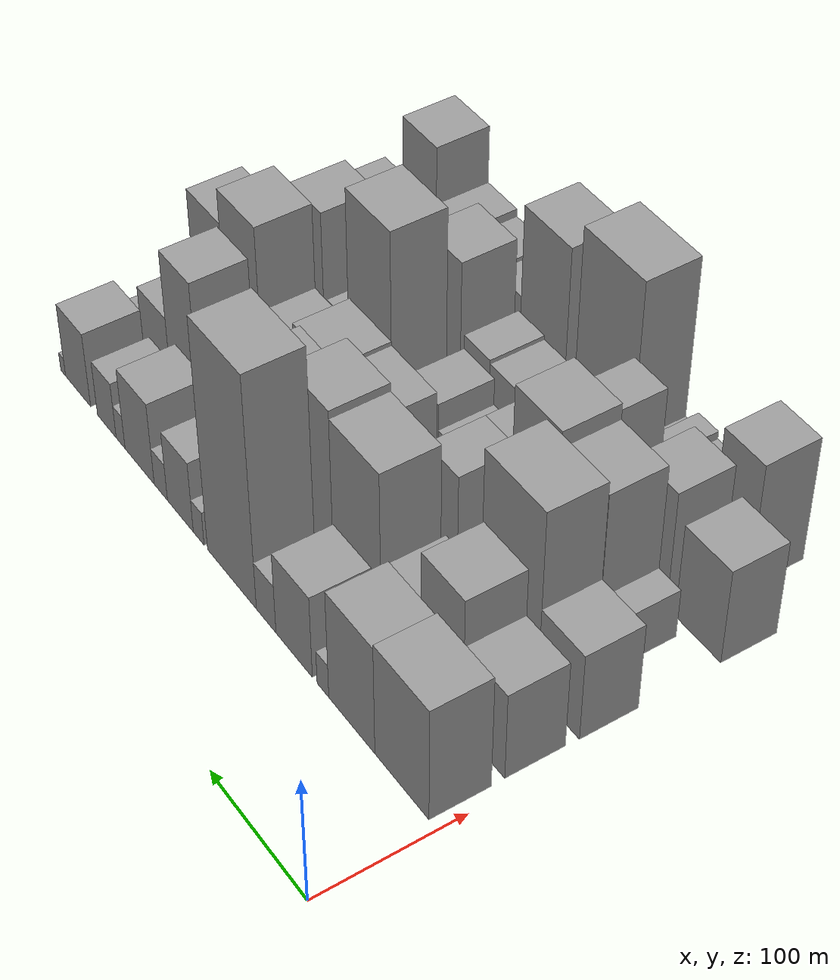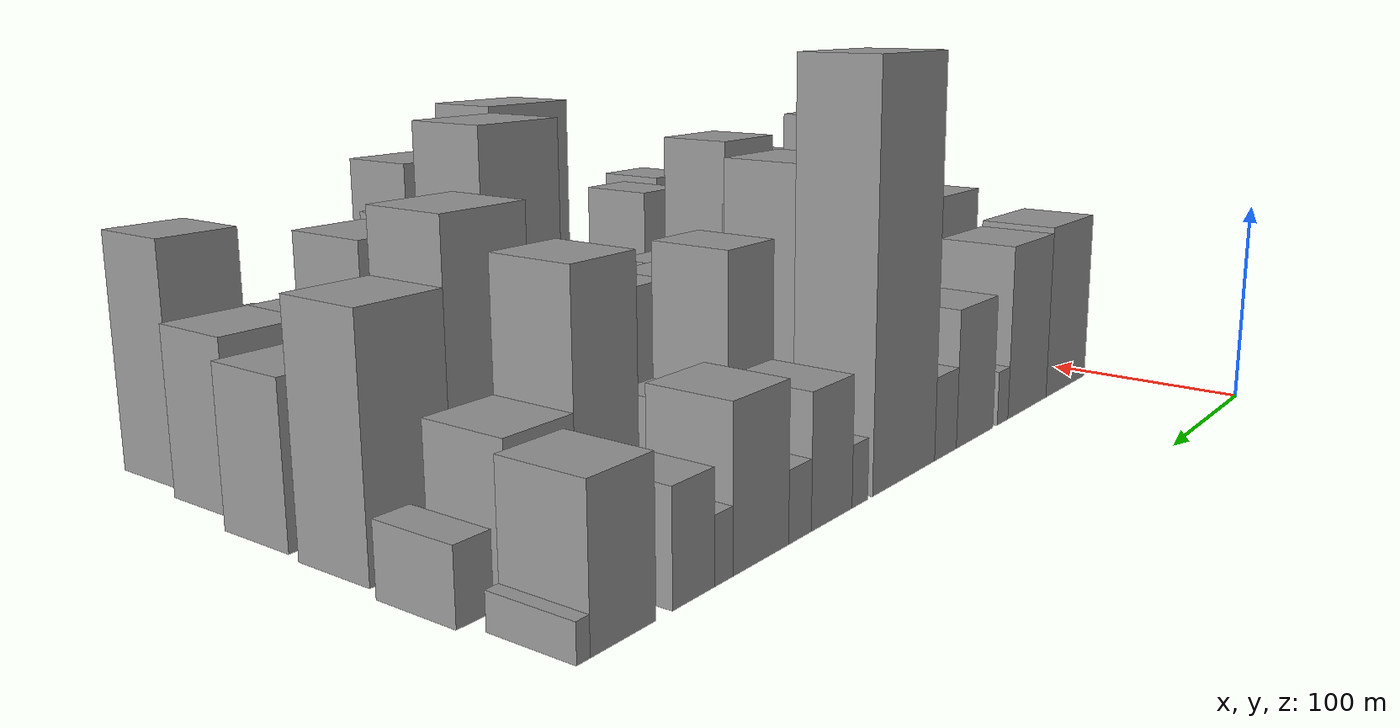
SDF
<sdf version="1.6">
 <world name="default">
  <model name="building_25">
   <static>1</static>
   <pose>100.0000 34.4187 0 0.000000 0.000000 0.000000</pose>
   <link name="link">
    <pose>0 0 45.00 0 0 0</pose>
    <collision name="collision"><geometry><box><size>40.0000 52.7319 90.0000</size></box></geometry></collision>
    <visual name="visual">
     <cast_shadows>0</cast_shadows>
     <geometry><box><size>40.0000 52.7319 90.0000</size></box></geometry>
     <material>
      <script>
       <uri>model://grey_wall/materials/scripts</uri>
       <uri>model://grey_wall/materials/textures</uri>
       <name>vrc/grey_wall</name>
      </script>
     </material>
    </visual>
   </link>
  </model>
  <model name="building_26">
   <static>1</static>
   <pose>100.0000 84.2863 0 0.000000 0.000000 0.000000</pose>
   <link name="link">
    <pose>0 0 43.50 0 0 0</pose>
    <collision name="collision"><geometry><box><size>40.0000 47.0033 87.0000</size></box></geometry></collision>
    <visual name="visual">
     <cast_shadows>0</cast_shadows>
     <geometry><box><size>40.0000 47.0033 87.0000</size></box></geometry>
     <material>
      <script>
       <uri>model://grey_wall/materials/scripts</uri>
       <uri>model://grey_wall/materials/textures</uri>
       <name>vrc/grey_wall</name>
      </script>
     </material>
    </visual>
   </link>
  </model>
  <model name="building_27">
   <static>1</static>
   <pose>100.0000 113.9015 0 0.000000 0.000000 0.000000</pose>
   <link name="link">
    <pose>0 0 13.50 0 0 0</pose>
    <collision name="collision"><geometry><box><size>40.0000 12.2271 27.0000</size></box></geometry></collision>
    <visual name="visual">
     <cast_shadows>0</cast_shadows>
     <geometry><box><size>40.0000 12.2271 27.0000</size></box></geometry>
     <material>
      <script>
       <uri>model://grey_wall/materials/scripts</uri>
       <uri>model://grey_wall/materials/textures</uri>
       <name>vrc/grey_wall</name>
      </script>
     </material>
    </visual>
   </link>
  </model>
  <model name="building_28">
   <static>1</static>
   <pose>100.0000 144.5365 0 0.000000 0.000000 0.000000</pose>
   <link name="link">
    <pose>0 0 33.00 0 0 0</pose>
    <collision name="collision"><geometry><box><size>40.0000 39.0430 66.0000</size></box></geometry></collision>
    <visual name="visual">
     <cast_shadows>0</cast_shadows>
     <geometry><box><size>40.0000 39.0430 66.0000</size></box></geometry>
     <material>
      <script>
       <uri>model://grey_wall/materials/scripts</uri>
       <uri>model://grey_wall/materials/textures</uri>
       <name>vrc/grey_wall</name>
      </script>
     </material>
    </visual>
   </link>
  </model>
  <model name="building_29">
   <static>1</static>
   <pose>100.0000 174.8600 0 0.000000 0.000000 0.000000</pose>
   <link name="link">
    <pose>0 0 19.50 0 0 0</pose>
    <collision name="collision"><geometry><box><size>40.0000 21.6038 39.0000</size></box></geometry></collision>
    <visual name="visual">
     <cast_shadows>0</cast_shadows>
     <geometry><box><size>40.0000 21.6038 39.0000</size></box></geometry>
     <material>
      <script>
       <uri>model://grey_wall/materials/scripts</uri>
       <uri>model://grey_wall/materials/textures</uri>
       <name>vrc/grey_wall</name>
      </script>
     </material>
    </visual>
   </link>
  </model>
  <model name="building_30">
   <static>1</static>
   <pose>100.0000 213.5052 0 0.000000 0.000000 0.000000</pose>
   <link name="link">
    <pose>0 0 91.50 0 0 0</pose>
    <collision name="collision"><geometry><box><size>40.0000 55.6866 183.0000</size></box></geometry></collision>
    <visual name="visual">
     <cast_shadows>0</cast_shadows>
     <geometry><box><size>40.0000 55.6866 183.0000</size></box></geometry>
     <material>
      <script>
       <uri>model://grey_wall/materials/scripts</uri>
       <uri>model://grey_wall/materials/textures</uri>
       <name>vrc/grey_wall</name>
      </script>
     </material>
    </visual>
   </link>
  </model>
  <model name="building_31">
   <static>1</static>
   <pose>100.0000 251.6890 0 0.000000 0.000000 0.000000</pose>
   <link name="link">
    <pose>0 0 13.50 0 0 0</pose>
    <collision name="collision"><geometry><box><size>40.0000 12.6810 27.0000</size></box></geometry></collision>
    <visual name="visual">
     <cast_shadows>0</cast_shadows>
     <geometry><box><size>40.0000 12.6810 27.0000</size></box></geometry>
     <material>
      <script>
       <uri>model://grey_wall/materials/scripts</uri>
       <uri>model://grey_wall/materials/textures</uri>
       <name>vrc/grey_wall</name>
      </script>
     </material>
    </visual>
   </link>
  </model>
  <model name="building_32">
   <static>1</static>
   <pose>100.0000 273.4831 0 0.000000 0.000000 0.000000</pose>
   <link name="link">
    <pose>0 0 28.50 0 0 0</pose>
    <collision name="collision"><geometry><box><size>40.0000 30.9074 57.0000</size></box></geometry></collision>
    <visual name="visual">
     <cast_shadows>0</cast_shadows>
     <geometry><box><size>40.0000 30.9074 57.0000</size></box></geometry>
     <material>
      <script>
       <uri>model://grey_wall/materials/scripts</uri>
       <uri>model://grey_wall/materials/textures</uri>
       <name>vrc/grey_wall</name>
      </script>
     </material>
    </visual>
   </link>
  </model>
  <model name="building_33">
   <static>1</static>
   <pose>100.0000 296.9893 0 0.000000 0.000000 0.000000</pose>
   <link name="link">
    <pose>0 0 15.00 0 0 0</pose>
    <collision name="collision"><geometry><box><size>40.0000 16.1050 30.0000</size></box></geometry></collision>
    <visual name="visual">
     <cast_shadows>0</cast_shadows>
     <geometry><box><size>40.0000 16.1050 30.0000</size></box></geometry>
     <material>
      <script>
       <uri>model://grey_wall/materials/scripts</uri>
       <uri>model://grey_wall/materials/textures</uri>
       <name>vrc/grey_wall</name>
      </script>
     </material>
    </visual>
   </link>
  </model>
  <model name="building_34">
   <static>1</static>
   <pose>100.0000 323.2109 0 0.000000 0.000000 0.000000</pose>
   <link name="link">
    <pose>0 0 33.00 0 0 0</pose>
    <collision name="collision"><geometry><box><size>40.0000 36.3383 66.0000</size></box></geometry></collision>
    <visual name="visual">
     <cast_shadows>0</cast_shadows>
     <geometry><box><size>40.0000 36.3383 66.0000</size></box></geometry>
     <material>
      <script>
       <uri>model://grey_wall/materials/scripts</uri>
       <uri>model://grey_wall/materials/textures</uri>
       <name>vrc/grey_wall</name>
      </script>
     </material>
    </visual>
   </link>
  </model>
  <model name="building_35">
   <static>1</static>
   <pose>100.0000 347.0248 0 0.000000 0.000000 0.000000</pose>
   <link name="link">
    <pose>0 0 13.50 0 0 0</pose>
    <collision name="collision"><geometry><box><size>40.0000 11.2897 27.0000</size></box></geometry></collision>
    <visual name="visual">
     <cast_shadows>0</cast_shadows>
     <geometry><box><size>40.0000 11.2897 27.0000</size></box></geometry>
     <material>
      <script>
       <uri>model://grey_wall/materials/scripts</uri>
       <uri>model://grey_wall/materials/textures</uri>
       <name>vrc/grey_wall</name>
      </script>
     </material>
    </visual>
   </link>
  </model>
  <model name="building_36">
   <static>1</static>
   <pose>100.0000 364.6943 0 0.000000 0.000000 0.000000</pose>
   <link name="link">
    <pose>0 0 22.50 0 0 0</pose>
    <collision name="collision"><geometry><box><size>40.0000 24.0492 45.0000</size></box></geometry></collision>
    <visual name="visual">
     <cast_shadows>0</cast_shadows>
     <geometry><box><size>40.0000 24.0492 45.0000</size></box></geometry>
     <material>
      <script>
       <uri>model://grey_wall/materials/scripts</uri>
       <uri>model://grey_wall/materials/textures</uri>
       <name>vrc/grey_wall</name>
      </script>
     </material>
    </visual>
   </link>
  </model>
  <model name="building_37">
   <static>1</static>
   <pose>100.0000 402.3013 0 0.000000 0.000000 0.000000</pose>
   <link name="link">
    <pose>0 0 30.00 0 0 0</pose>
    <collision name="collision"><geometry><box><size>40.0000 33.1650 60.0000</size></box></geometry></collision>
    <visual name="visual">
     <cast_shadows>0</cast_shadows>
     <geometry><box><size>40.0000 33.1650 60.0000</size></box></geometry>
     <material>
      <script>
       <uri>model://grey_wall/materials/scripts</uri>
       <uri>model://grey_wall/materials/textures</uri>
       <name>vrc/grey_wall</name>
      </script>
     </material>
    </visual>
   </link>
  </model>
  <model name="building_38">
   <static>1</static>
   <pose>100.0000 422.0885 0 0.000000 0.000000 0.000000</pose>
   <link name="link">
    <pose>0 0 7.50 0 0 0</pose>
    <collision name="collision"><geometry><box><size>40.0000 6.4094 15.0000</size></box></geometry></collision>
    <visual name="visual">
     <cast_shadows>0</cast_shadows>
     <geometry><box><size>40.0000 6.4094 15.0000</size></box></geometry>
     <material>
      <script>
       <uri>model://grey_wall/materials/scripts</uri>
       <uri>model://grey_wall/materials/textures</uri>
       <name>vrc/grey_wall</name>
      </script>
     </material>
    </visual>
   </link>
  </model>
  <model name="building_70">
   <static>1</static>
   <pose>149.0000 28.4227 0 0.000000 0.000000 0.000000</pose>
   <link name="link">
    <pose>0 0 34.50 0 0 0</pose>
    <collision name="collision"><geometry><box><size>40.0000 40.0129 69.0000</size></box></geometry></collision>
    <visual name="visual">
     <cast_shadows>0</cast_shadows>
     <geometry><box><size>40.0000 40.0129 69.0000</size></box></geometry>
     <material>
      <script>
       <uri>model://grey_wall/materials/scripts</uri>
       <uri>model://grey_wall/materials/textures</uri>
       <name>vrc/grey_wall</name>
      </script>
     </material>
    </visual>
   </link>
  </model>
  <model name="building_71">
   <static>1</static>
   <pose>149.0000 69.0347 0 0.000000 0.000000 0.000000</pose>
   <link name="link">
    <pose>0 0 52.50 0 0 0</pose>
    <collision name="collision"><geometry><box><size>40.0000 41.2111 105.0000</size></box></geometry></collision>
    <visual name="visual">
     <cast_shadows>0</cast_shadows>
     <geometry><box><size>40.0000 41.2111 105.0000</size></box></geometry>
     <material>
      <script>
       <uri>model://grey_wall/materials/scripts</uri>
       <uri>model://grey_wall/materials/textures</uri>
       <name>vrc/grey_wall</name>
      </script>
     </material>
    </visual>
   </link>
  </model>
  <model name="building_72">
   <static>1</static>
   <pose>149.0000 107.3769 0 0.000000 0.000000 0.000000</pose>
   <link name="link">
    <pose>0 0 31.50 0 0 0</pose>
    <collision name="collision"><geometry><box><size>40.0000 35.4734 63.0000</size></box></geometry></collision>
    <visual name="visual">
     <cast_shadows>0</cast_shadows>
     <geometry><box><size>40.0000 35.4734 63.0000</size></box></geometry>
     <material>
      <script>
       <uri>model://grey_wall/materials/scripts</uri>
       <uri>model://grey_wall/materials/textures</uri>
       <name>vrc/grey_wall</name>
      </script>
     </material>
    </visual>
   </link>
  </model>
  <model name="building_73">
   <static>1</static>
   <pose>149.0000 155.2507 0 0.000000 0.000000 0.000000</pose>
   <link name="link">
    <pose>0 0 64.50 0 0 0</pose>
    <collision name="collision"><geometry><box><size>40.0000 50.2742 129.0000</size></box></geometry></collision>
    <visual name="visual">
     <cast_shadows>0</cast_shadows>
     <geometry><box><size>40.0000 50.2742 129.0000</size></box></geometry>
     <material>
      <script>
       <uri>model://grey_wall/materials/scripts</uri>
       <uri>model://grey_wall/materials/textures</uri>
       <name>vrc/grey_wall</name>
      </script>
     </material>
    </visual>
   </link>
  </model>
  <model name="building_74">
   <static>1</static>
   <pose>149.0000 202.5025 0 0.000000 0.000000 0.000000</pose>
   <link name="link">
    <pose>0 0 67.50 0 0 0</pose>
    <collision name="collision"><geometry><box><size>40.0000 44.2293 135.0000</size></box></geometry></collision>
    <visual name="visual">
     <cast_shadows>0</cast_shadows>
     <geometry><box><size>40.0000 44.2293 135.0000</size></box></geometry>
     <material>
      <script>
       <uri>model://grey_wall/materials/scripts</uri>
       <uri>model://grey_wall/materials/textures</uri>
       <name>vrc/grey_wall</name>
      </script>
     </material>
    </visual>
   </link>
  </model>
  <model name="building_75">
   <static>1</static>
   <pose>149.0000 234.2312 0 0.000000 0.000000 0.000000</pose>
   <link name="link">
    <pose>0 0 16.50 0 0 0</pose>
    <collision name="collision"><geometry><box><size>40.0000 19.2281 33.0000</size></box></geometry></collision>
    <visual name="visual">
     <cast_shadows>0</cast_shadows>
     <geometry><box><size>40.0000 19.2281 33.0000</size></box></geometry>
     <material>
      <script>
       <uri>model://grey_wall/materials/scripts</uri>
       <uri>model://grey_wall/materials/textures</uri>
       <name>vrc/grey_wall</name>
      </script>
     </material>
    </visual>
   </link>
  </model>
  <model name="building_76">
   <static>1</static>
   <pose>149.0000 260.2541 0 0.000000 0.000000 0.000000</pose>
   <link name="link">
    <pose>0 0 52.50 0 0 0</pose>
    <collision name="collision"><geometry><box><size>40.0000 32.8178 105.0000</size></box></geometry></collision>
    <visual name="visual">
     <cast_shadows>0</cast_shadows>
     <geometry><box><size>40.0000 32.8178 105.0000</size></box></geometry>
     <material>
      <script>
       <uri>model://grey_wall/materials/scripts</uri>
       <uri>model://grey_wall/materials/textures</uri>
       <name>vrc/grey_wall</name>
      </script>
     </material>
    </visual>
   </link>
  </model>
  <model name="building_77">
   <static>1</static>
   <pose>149.0000 288.5850 0 0.000000 0.000000 0.000000</pose>
   <link name="link">
    <pose>0 0 22.50 0 0 0</pose>
    <collision name="collision"><geometry><box><size>40.0000 23.8441 45.0000</size></box></geometry></collision>
    <visual name="visual">
     <cast_shadows>0</cast_shadows>
     <geometry><box><size>40.0000 23.8441 45.0000</size></box></geometry>
     <material>
      <script>
       <uri>model://grey_wall/materials/scripts</uri>
       <uri>model://grey_wall/materials/textures</uri>
       <name>vrc/grey_wall</name>
      </script>
     </material>
    </visual>
   </link>
  </model>
  <model name="building_78">
   <static>1</static>
   <pose>149.0000 317.0300 0 0.000000 0.000000 0.000000</pose>
   <link name="link">
    <pose>0 0 13.50 0 0 0</pose>
    <collision name="collision"><geometry><box><size>40.0000 13.0458 27.0000</size></box></geometry></collision>
    <visual name="visual">
     <cast_shadows>0</cast_shadows>
     <geometry><box><size>40.0000 13.0458 27.0000</size></box></geometry>
     <material>
      <script>
       <uri>model://grey_wall/materials/scripts</uri>
       <uri>model://grey_wall/materials/textures</uri>
       <name>vrc/grey_wall</name>
      </script>
     </material>
    </visual>
   </link>
  </model>
  <model name="building_79">
   <static>1</static>
   <pose>149.0000 327.1718 0 0.000000 0.000000 0.000000</pose>
   <link name="link">
    <pose>0 0 7.50 0 0 0</pose>
    <collision name="collision"><geometry><box><size>40.0000 7.2379 15.0000</size></box></geometry></collision>
    <visual name="visual">
     <cast_shadows>0</cast_shadows>
     <geometry><box><size>40.0000 7.2379 15.0000</size></box></geometry>
     <material>
      <script>
       <uri>model://grey_wall/materials/scripts</uri>
       <uri>model://grey_wall/materials/textures</uri>
       <name>vrc/grey_wall</name>
      </script>
     </material>
    </visual>
   </link>
  </model>
  <model name="building_80">
   <static>1</static>
   <pose>149.0000 352.7425 0 0.000000 0.000000 0.000000</pose>
   <link name="link">
    <pose>0 0 57.00 0 0 0</pose>
    <collision name="collision"><geometry><box><size>40.0000 35.9036 114.0000</size></box></geometry></collision>
    <visual name="visual">
     <cast_shadows>0</cast_shadows>
     <geometry><box><size>40.0000 35.9036 114.0000</size></box></geometry>
     <material>
      <script>
       <uri>model://grey_wall/materials/scripts</uri>
       <uri>model://grey_wall/materials/textures</uri>
       <name>vrc/grey_wall</name>
      </script>
     </material>
    </visual>
   </link>
  </model>
  <model name="building_81">
   <static>1</static>
   <pose>149.0000 388.3239 0 0.000000 0.000000 0.000000</pose>
   <link name="link">
    <pose>0 0 30.00 0 0 0</pose>
    <collision name="collision"><geometry><box><size>40.0000 35.2592 60.0000</size></box></geometry></collision>
    <visual name="visual">
     <cast_shadows>0</cast_shadows>
     <geometry><box><size>40.0000 35.2592 60.0000</size></box></geometry>
     <material>
      <script>
       <uri>model://grey_wall/materials/scripts</uri>
       <uri>model://grey_wall/materials/textures</uri>
       <name>vrc/grey_wall</name>
      </script>
     </material>
    </visual>
   </link>
  </model>
  <model name="building_82">
   <static>1</static>
   <pose>149.0000 421.5460 0 0.000000 0.000000 0.000000</pose>
   <link name="link">
    <pose>0 0 15.00 0 0 0</pose>
    <collision name="collision"><geometry><box><size>40.0000 17.1850 30.0000</size></box></geometry></collision>
    <visual name="visual">
     <cast_shadows>0</cast_shadows>
     <geometry><box><size>40.0000 17.1850 30.0000</size></box></geometry>
     <material>
      <script>
       <uri>model://grey_wall/materials/scripts</uri>
       <uri>model://grey_wall/materials/textures</uri>
       <name>vrc/grey_wall</name>
      </script>
     </material>
    </visual>
   </link>
  </model>
  <model name="building_120">
   <static>1</static>
   <pose>198.0000 27.4465 0 0.000000 0.000000 0.000000</pose>
   <link name="link">
    <pose>0 0 34.50 0 0 0</pose>
    <collision name="collision"><geometry><box><size>40.0000 39.2813 69.0000</size></box></geometry></collision>
    <visual name="visual">
     <cast_shadows>0</cast_shadows>
     <geometry><box><size>40.0000 39.2813 69.0000</size></box></geometry>
     <material>
      <script>
       <uri>model://grey_wall/materials/scripts</uri>
       <uri>model://grey_wall/materials/textures</uri>
       <name>vrc/grey_wall</name>
      </script>
     </material>
    </visual>
   </link>
  </model>
  <model name="building_121">
   <static>1</static>
   <pose>198.0000 75.0837 0 0.000000 0.000000 0.000000</pose>
   <link name="link">
    <pose>0 0 72.00 0 0 0</pose>
    <collision name="collision"><geometry><box><size>40.0000 55.9932 144.0000</size></box></geometry></collision>
    <visual name="visual">
     <cast_shadows>0</cast_shadows>
     <geometry><box><size>40.0000 55.9932 144.0000</size></box></geometry>
     <material>
      <script>
       <uri>model://grey_wall/materials/scripts</uri>
       <uri>model://grey_wall/materials/textures</uri>
       <name>vrc/grey_wall</name>
      </script>
     </material>
    </visual>
   </link>
  </model>
  <model name="building_122">
   <static>1</static>
   <pose>198.0000 112.4177 0 0.000000 0.000000 0.000000</pose>
   <link name="link">
    <pose>0 0 18.00 0 0 0</pose>
    <collision name="collision"><geometry><box><size>40.0000 18.6747 36.0000</size></box></geometry></collision>
    <visual name="visual">
     <cast_shadows>0</cast_shadows>
     <geometry><box><size>40.0000 18.6747 36.0000</size></box></geometry>
     <material>
      <script>
       <uri>model://grey_wall/materials/scripts</uri>
       <uri>model://grey_wall/materials/textures</uri>
       <name>vrc/grey_wall</name>
      </script>
     </material>
    </visual>
   </link>
  </model>
  <model name="building_123">
   <static>1</static>
   <pose>198.0000 142.8304 0 0.000000 0.000000 0.000000</pose>
   <link name="link">
    <pose>0 0 51.00 0 0 0</pose>
    <collision name="collision"><geometry><box><size>40.0000 32.1506 102.0000</size></box></geometry></collision>
    <visual name="visual">
     <cast_shadows>0</cast_shadows>
     <geometry><box><size>40.0000 32.1506 102.0000</size></box></geometry>
     <material>
      <script>
       <uri>model://grey_wall/materials/scripts</uri>
       <uri>model://grey_wall/materials/textures</uri>
       <name>vrc/grey_wall</name>
      </script>
     </material>
    </visual>
   </link>
  </model>
  <model name="building_124">
   <static>1</static>
   <pose>198.0000 172.9054 0 0.000000 0.000000 0.000000</pose>
   <link name="link">
    <pose>0 0 24.00 0 0 0</pose>
    <collision name="collision"><geometry><box><size>40.0000 27.9995 48.0000</size></box></geometry></collision>
    <visual name="visual">
     <cast_shadows>0</cast_shadows>
     <geometry><box><size>40.0000 27.9995 48.0000</size></box></geometry>
     <material>
      <script>
       <uri>model://grey_wall/materials/scripts</uri>
       <uri>model://grey_wall/materials/textures</uri>
       <name>vrc/grey_wall</name>
      </script>
     </material>
    </visual>
   </link>
  </model>
  <model name="building_125">
   <static>1</static>
   <pose>198.0000 197.0400 0 0.000000 0.000000 0.000000</pose>
   <link name="link">
    <pose>0 0 18.00 0 0 0</pose>
    <collision name="collision"><geometry><box><size>40.0000 20.2697 36.0000</size></box></geometry></collision>
    <visual name="visual">
     <cast_shadows>0</cast_shadows>
     <geometry><box><size>40.0000 20.2697 36.0000</size></box></geometry>
     <material>
      <script>
       <uri>model://grey_wall/materials/scripts</uri>
       <uri>model://grey_wall/materials/textures</uri>
       <name>vrc/grey_wall</name>
      </script>
     </material>
    </visual>
   </link>
  </model>
  <model name="building_126">
   <static>1</static>
   <pose>198.0000 231.3203 0 0.000000 0.000000 0.000000</pose>
   <link name="link">
    <pose>0 0 40.50 0 0 0</pose>
    <collision name="collision"><geometry><box><size>40.0000 48.2908 81.0000</size></box></geometry></collision>
    <visual name="visual">
     <cast_shadows>0</cast_shadows>
     <geometry><box><size>40.0000 48.2908 81.0000</size></box></geometry>
     <material>
      <script>
       <uri>model://grey_wall/materials/scripts</uri>
       <uri>model://grey_wall/materials/textures</uri>
       <name>vrc/grey_wall</name>
      </script>
     </material>
    </visual>
   </link>
  </model>
  <model name="building_127">
   <static>1</static>
   <pose>198.0000 278.3875 0 0.000000 0.000000 0.000000</pose>
   <link name="link">
    <pose>0 0 42.00 0 0 0</pose>
    <collision name="collision"><geometry><box><size>40.0000 45.8436 84.0000</size></box></geometry></collision>
    <visual name="visual">
     <cast_shadows>0</cast_shadows>
     <geometry><box><size>40.0000 45.8436 84.0000</size></box></geometry>
     <material>
      <script>
       <uri>model://grey_wall/materials/scripts</uri>
       <uri>model://grey_wall/materials/textures</uri>
       <name>vrc/grey_wall</name>
      </script>
     </material>
    </visual>
   </link>
  </model>
  <model name="building_128">
   <static>1</static>
   <pose>198.0000 305.1830 0 0.000000 0.000000 0.000000</pose>
   <link name="link">
    <pose>0 0 9.00 0 0 0</pose>
    <collision name="collision"><geometry><box><size>40.0000 7.7475 18.0000</size></box></geometry></collision>
    <visual name="visual">
     <cast_shadows>0</cast_shadows>
     <geometry><box><size>40.0000 7.7475 18.0000</size></box></geometry>
     <material>
      <script>
       <uri>model://grey_wall/materials/scripts</uri>
       <uri>model://grey_wall/materials/textures</uri>
       <name>vrc/grey_wall</name>
      </script>
     </material>
    </visual>
   </link>
  </model>
  <model name="building_129">
   <static>1</static>
   <pose>198.0000 325.3304 0 0.000000 0.000000 0.000000</pose>
   <link name="link">
    <pose>0 0 31.50 0 0 0</pose>
    <collision name="collision"><geometry><box><size>40.0000 32.5473 63.0000</size></box></geometry></collision>
    <visual name="visual">
     <cast_shadows>0</cast_shadows>
     <geometry><box><size>40.0000 32.5473 63.0000</size></box></geometry>
     <material>
      <script>
       <uri>model://grey_wall/materials/scripts</uri>
       <uri>model://grey_wall/materials/textures</uri>
       <name>vrc/grey_wall</name>
      </script>
     </material>
    </visual>
   </link>
  </model>
  <model name="building_130">
   <static>1</static>
   <pose>198.0000 363.3993 0 0.000000 0.000000 0.000000</pose>
   <link name="link">
    <pose>0 0 64.50 0 0 0</pose>
    <collision name="collision"><geometry><box><size>40.0000 43.5904 129.0000</size></box></geometry></collision>
    <visual name="visual">
     <cast_shadows>0</cast_shadows>
     <geometry><box><size>40.0000 43.5904 129.0000</size></box></geometry>
     <material>
      <script>
       <uri>model://grey_wall/materials/scripts</uri>
       <uri>model://grey_wall/materials/textures</uri>
       <name>vrc/grey_wall</name>
      </script>
     </material>
    </visual>
   </link>
  </model>
  <model name="building_131">
   <static>1</static>
   <pose>198.0000 405.3227 0 0.000000 0.000000 0.000000</pose>
   <link name="link">
    <pose>0 0 51.00 0 0 0</pose>
    <collision name="collision"><geometry><box><size>40.0000 40.2565 102.0000</size></box></geometry></collision>
    <visual name="visual">
     <cast_shadows>0</cast_shadows>
     <geometry><box><size>40.0000 40.2565 102.0000</size></box></geometry>
     <material>
      <script>
       <uri>model://grey_wall/materials/scripts</uri>
       <uri>model://grey_wall/materials/textures</uri>
       <name>vrc/grey_wall</name>
      </script>
     </material>
    </visual>
   </link>
  </model>
  <model name="building_172">
   <static>1</static>
   <pose>247.0000 47.4174 0 0.000000 0.000000 0.000000</pose>
   <link name="link">
    <pose>0 0 19.50 0 0 0</pose>
    <collision name="collision"><geometry><box><size>40.0000 20.0448 39.0000</size></box></geometry></collision>
    <visual name="visual">
     <cast_shadows>0</cast_shadows>
     <geometry><box><size>40.0000 20.0448 39.0000</size></box></geometry>
     <material>
      <script>
       <uri>model://grey_wall/materials/scripts</uri>
       <uri>model://grey_wall/materials/textures</uri>
       <name>vrc/grey_wall</name>
      </script>
     </material>
    </visual>
   </link>
  </model>
  <model name="building_173">
   <static>1</static>
   <pose>247.0000 78.8623 0 0.000000 0.000000 0.000000</pose>
   <link name="link">
    <pose>0 0 60.00 0 0 0</pose>
    <collision name="collision"><geometry><box><size>40.0000 42.8450 120.0000</size></box></geometry></collision>
    <visual name="visual">
     <cast_shadows>0</cast_shadows>
     <geometry><box><size>40.0000 42.8450 120.0000</size></box></geometry>
     <material>
      <script>
       <uri>model://grey_wall/materials/scripts</uri>
       <uri>model://grey_wall/materials/textures</uri>
       <name>vrc/grey_wall</name>
      </script>
     </material>
    </visual>
   </link>
  </model>
  <model name="building_174">
   <static>1</static>
   <pose>247.0000 122.4148 0 0.000000 0.000000 0.000000</pose>
   <link name="link">
    <pose>0 0 66.00 0 0 0</pose>
    <collision name="collision"><geometry><box><size>40.0000 44.2601 132.0000</size></box></geometry></collision>
    <visual name="visual">
     <cast_shadows>0</cast_shadows>
     <geometry><box><size>40.0000 44.2601 132.0000</size></box></geometry>
     <material>
      <script>
       <uri>model://grey_wall/materials/scripts</uri>
       <uri>model://grey_wall/materials/textures</uri>
       <name>vrc/grey_wall</name>
      </script>
     </material>
    </visual>
   </link>
  </model>
  <model name="building_175">
   <static>1</static>
   <pose>247.0000 164.3074 0 0.000000 0.000000 0.000000</pose>
   <link name="link">
    <pose>0 0 36.00 0 0 0</pose>
    <collision name="collision"><geometry><box><size>40.0000 39.5252 72.0000</size></box></geometry></collision>
    <visual name="visual">
     <cast_shadows>0</cast_shadows>
     <geometry><box><size>40.0000 39.5252 72.0000</size></box></geometry>
     <material>
      <script>
       <uri>model://grey_wall/materials/scripts</uri>
       <uri>model://grey_wall/materials/textures</uri>
       <name>vrc/grey_wall</name>
      </script>
     </material>
    </visual>
   </link>
  </model>
  <model name="building_176">
   <static>1</static>
   <pose>247.0000 188.5625 0 0.000000 0.000000 0.000000</pose>
   <link name="link">
    <pose>0 0 9.00 0 0 0</pose>
    <collision name="collision"><geometry><box><size>40.0000 8.9851 18.0000</size></box></geometry></collision>
    <visual name="visual">
     <cast_shadows>0</cast_shadows>
     <geometry><box><size>40.0000 8.9851 18.0000</size></box></geometry>
     <material>
      <script>
       <uri>model://grey_wall/materials/scripts</uri>
       <uri>model://grey_wall/materials/textures</uri>
       <name>vrc/grey_wall</name>
      </script>
     </material>
    </visual>
   </link>
  </model>
  <model name="building_177">
   <static>1</static>
   <pose>247.0000 209.1656 0 0.000000 0.000000 0.000000</pose>
   <link name="link">
    <pose>0 0 18.00 0 0 0</pose>
    <collision name="collision"><geometry><box><size>40.0000 20.2211 36.0000</size></box></geometry></collision>
    <visual name="visual">
     <cast_shadows>0</cast_shadows>
     <geometry><box><size>40.0000 20.2211 36.0000</size></box></geometry>
     <material>
      <script>
       <uri>model://grey_wall/materials/scripts</uri>
       <uri>model://grey_wall/materials/textures</uri>
       <name>vrc/grey_wall</name>
      </script>
     </material>
    </visual>
   </link>
  </model>
  <model name="building_178">
   <static>1</static>
   <pose>247.0000 235.2679 0 0.000000 0.000000 0.000000</pose>
   <link name="link">
    <pose>0 0 28.50 0 0 0</pose>
    <collision name="collision"><geometry><box><size>40.0000 31.9833 57.0000</size></box></geometry></collision>
    <visual name="visual">
     <cast_shadows>0</cast_shadows>
     <geometry><box><size>40.0000 31.9833 57.0000</size></box></geometry>
     <material>
      <script>
       <uri>model://grey_wall/materials/scripts</uri>
       <uri>model://grey_wall/materials/textures</uri>
       <name>vrc/grey_wall</name>
      </script>
     </material>
    </visual>
   </link>
  </model>
  <model name="building_179">
   <static>1</static>
   <pose>247.0000 260.6213 0 0.000000 0.000000 0.000000</pose>
   <link name="link">
    <pose>0 0 16.50 0 0 0</pose>
    <collision name="collision"><geometry><box><size>40.0000 18.7235 33.0000</size></box></geometry></collision>
    <visual name="visual">
     <cast_shadows>0</cast_shadows>
     <geometry><box><size>40.0000 18.7235 33.0000</size></box></geometry>
     <material>
      <script>
       <uri>model://grey_wall/materials/scripts</uri>
       <uri>model://grey_wall/materials/textures</uri>
       <name>vrc/grey_wall</name>
      </script>
     </material>
    </visual>
   </link>
  </model>
  <model name="building_180">
   <static>1</static>
   <pose>247.0000 294.0315 0 0.000000 0.000000 0.000000</pose>
   <link name="link">
    <pose>0 0 76.50 0 0 0</pose>
    <collision name="collision"><geometry><box><size>40.0000 48.0970 153.0000</size></box></geometry></collision>
    <visual name="visual">
     <cast_shadows>0</cast_shadows>
     <geometry><box><size>40.0000 48.0970 153.0000</size></box></geometry>
     <material>
      <script>
       <uri>model://grey_wall/materials/scripts</uri>
       <uri>model://grey_wall/materials/textures</uri>
       <name>vrc/grey_wall</name>
      </script>
     </material>
    </visual>
   </link>
  </model>
  <model name="building_181">
   <static>1</static>
   <pose>247.0000 330.6400 0 0.000000 0.000000 0.000000</pose>
   <link name="link">
    <pose>0 0 24.00 0 0 0</pose>
    <collision name="collision"><geometry><box><size>40.0000 25.1199 48.0000</size></box></geometry></collision>
    <visual name="visual">
     <cast_shadows>0</cast_shadows>
     <geometry><box><size>40.0000 25.1199 48.0000</size></box></geometry>
     <material>
      <script>
       <uri>model://grey_wall/materials/scripts</uri>
       <uri>model://grey_wall/materials/textures</uri>
       <name>vrc/grey_wall</name>
      </script>
     </material>
    </visual>
   </link>
  </model>
  <model name="building_182">
   <static>1</static>
   <pose>247.0000 364.8916 0 0.000000 0.000000 0.000000</pose>
   <link name="link">
    <pose>0 0 57.00 0 0 0</pose>
    <collision name="collision"><geometry><box><size>40.0000 35.3832 114.0000</size></box></geometry></collision>
    <visual name="visual">
     <cast_shadows>0</cast_shadows>
     <geometry><box><size>40.0000 35.3832 114.0000</size></box></geometry>
     <material>
      <script>
       <uri>model://grey_wall/materials/scripts</uri>
       <uri>model://grey_wall/materials/textures</uri>
       <name>vrc/grey_wall</name>
      </script>
     </material>
    </visual>
   </link>
  </model>
  <model name="building_183">
   <static>1</static>
   <pose>247.0000 402.8613 0 0.000000 0.000000 0.000000</pose>
   <link name="link">
    <pose>0 0 34.50 0 0 0</pose>
    <collision name="collision"><geometry><box><size>40.0000 40.5562 69.0000</size></box></geometry></collision>
    <visual name="visual">
     <cast_shadows>0</cast_shadows>
     <geometry><box><size>40.0000 40.5562 69.0000</size></box></geometry>
     <material>
      <script>
       <uri>model://grey_wall/materials/scripts</uri>
       <uri>model://grey_wall/materials/textures</uri>
       <name>vrc/grey_wall</name>
      </script>
     </material>
    </visual>
   </link>
  </model>
  <model name="building_221">
   <static>1</static>
   <pose>296.0000 28.9363 0 0.000000 0.000000 0.000000</pose>
   <link name="link">
    <pose>0 0 37.50 0 0 0</pose>
    <collision name="collision"><geometry><box><size>40.0000 41.4793 75.0000</size></box></geometry></collision>
    <visual name="visual">
     <cast_shadows>0</cast_shadows>
     <geometry><box><size>40.0000 41.4793 75.0000</size></box></geometry>
     <material>
      <script>
       <uri>model://grey_wall/materials/scripts</uri>
       <uri>model://grey_wall/materials/textures</uri>
       <name>vrc/grey_wall</name>
      </script>
     </material>
    </visual>
   </link>
  </model>
  <model name="building_222">
   <static>1</static>
   <pose>296.0000 76.1615 0 0.000000 0.000000 0.000000</pose>
   <link name="link">
    <pose>0 0 46.50 0 0 0</pose>
    <collision name="collision"><geometry><box><size>40.0000 36.9712 93.0000</size></box></geometry></collision>
    <visual name="visual">
     <cast_shadows>0</cast_shadows>
     <geometry><box><size>40.0000 36.9712 93.0000</size></box></geometry>
     <material>
      <script>
       <uri>model://grey_wall/materials/scripts</uri>
       <uri>model://grey_wall/materials/textures</uri>
       <name>vrc/grey_wall</name>
      </script>
     </material>
    </visual>
   </link>
  </model>
  <model name="building_223">
   <static>1</static>
   <pose>296.0000 107.4443 0 0.000000 0.000000 0.000000</pose>
   <link name="link">
    <pose>0 0 22.50 0 0 0</pose>
    <collision name="collision"><geometry><box><size>40.0000 25.5943 45.0000</size></box></geometry></collision>
    <visual name="visual">
     <cast_shadows>0</cast_shadows>
     <geometry><box><size>40.0000 25.5943 45.0000</size></box></geometry>
     <material>
      <script>
       <uri>model://grey_wall/materials/scripts</uri>
       <uri>model://grey_wall/materials/textures</uri>
       <name>vrc/grey_wall</name>
      </script>
     </material>
    </visual>
   </link>
  </model>
  <model name="building_224">
   <static>1</static>
   <pose>296.0000 135.6301 0 0.000000 0.000000 0.000000</pose>
   <link name="link">
    <pose>0 0 51.00 0 0 0</pose>
    <collision name="collision"><geometry><box><size>40.0000 30.7774 102.0000</size></box></geometry></collision>
    <visual name="visual">
     <cast_shadows>0</cast_shadows>
     <geometry><box><size>40.0000 30.7774 102.0000</size></box></geometry>
     <material>
      <script>
       <uri>model://grey_wall/materials/scripts</uri>
       <uri>model://grey_wall/materials/textures</uri>
       <name>vrc/grey_wall</name>
      </script>
     </material>
    </visual>
   </link>
  </model>
  <model name="building_225">
   <static>1</static>
   <pose>296.0000 162.3607 0 0.000000 0.000000 0.000000</pose>
   <link name="link">
    <pose>0 0 19.50 0 0 0</pose>
    <collision name="collision"><geometry><box><size>40.0000 22.6836 39.0000</size></box></geometry></collision>
    <visual name="visual">
     <cast_shadows>0</cast_shadows>
     <geometry><box><size>40.0000 22.6836 39.0000</size></box></geometry>
     <material>
      <script>
       <uri>model://grey_wall/materials/scripts</uri>
       <uri>model://grey_wall/materials/textures</uri>
       <name>vrc/grey_wall</name>
      </script>
     </material>
    </visual>
   </link>
  </model>
  <model name="building_226">
   <static>1</static>
   <pose>296.0000 189.1142 0 0.000000 0.000000 0.000000</pose>
   <link name="link">
    <pose>0 0 19.50 0 0 0</pose>
    <collision name="collision"><geometry><box><size>40.0000 22.8233 39.0000</size></box></geometry></collision>
    <visual name="visual">
     <cast_shadows>0</cast_shadows>
     <geometry><box><size>40.0000 22.8233 39.0000</size></box></geometry>
     <material>
      <script>
       <uri>model://grey_wall/materials/scripts</uri>
       <uri>model://grey_wall/materials/textures</uri>
       <name>vrc/grey_wall</name>
      </script>
     </material>
    </visual>
   </link>
  </model>
  <model name="building_227">
   <static>1</static>
   <pose>296.0000 221.6152 0 0.000000 0.000000 0.000000</pose>
   <link name="link">
    <pose>0 0 25.50 0 0 0</pose>
    <collision name="collision"><geometry><box><size>40.0000 30.1789 51.0000</size></box></geometry></collision>
    <visual name="visual">
     <cast_shadows>0</cast_shadows>
     <geometry><box><size>40.0000 30.1789 51.0000</size></box></geometry>
     <material>
      <script>
       <uri>model://grey_wall/materials/scripts</uri>
       <uri>model://grey_wall/materials/textures</uri>
       <name>vrc/grey_wall</name>
      </script>
     </material>
    </visual>
   </link>
  </model>
  <model name="building_228">
   <static>1</static>
   <pose>296.0000 250.3655 0 0.000000 0.000000 0.000000</pose>
   <link name="link">
    <pose>0 0 27.00 0 0 0</pose>
    <collision name="collision"><geometry><box><size>40.0000 27.3217 54.0000</size></box></geometry></collision>
    <visual name="visual">
     <cast_shadows>0</cast_shadows>
     <geometry><box><size>40.0000 27.3217 54.0000</size></box></geometry>
     <material>
      <script>
       <uri>model://grey_wall/materials/scripts</uri>
       <uri>model://grey_wall/materials/textures</uri>
       <name>vrc/grey_wall</name>
      </script>
     </material>
    </visual>
   </link>
  </model>
  <model name="building_229">
   <static>1</static>
   <pose>296.0000 288.5278 0 0.000000 0.000000 0.000000</pose>
   <link name="link">
    <pose>0 0 54.00 0 0 0</pose>
    <collision name="collision"><geometry><box><size>40.0000 41.0028 108.0000</size></box></geometry></collision>
    <visual name="visual">
     <cast_shadows>0</cast_shadows>
     <geometry><box><size>40.0000 41.0028 108.0000</size></box></geometry>
     <material>
      <script>
       <uri>model://grey_wall/materials/scripts</uri>
       <uri>model://grey_wall/materials/textures</uri>
       <name>vrc/grey_wall</name>
      </script>
     </material>
    </visual>
   </link>
  </model>
  <model name="building_230">
   <static>1</static>
   <pose>296.0000 313.5516 0 0.000000 0.000000 0.000000</pose>
   <link name="link">
    <pose>0 0 10.50 0 0 0</pose>
    <collision name="collision"><geometry><box><size>40.0000 9.0447 21.0000</size></box></geometry></collision>
    <visual name="visual">
     <cast_shadows>0</cast_shadows>
     <geometry><box><size>40.0000 9.0447 21.0000</size></box></geometry>
     <material>
      <script>
       <uri>model://grey_wall/materials/scripts</uri>
       <uri>model://grey_wall/materials/textures</uri>
       <name>vrc/grey_wall</name>
      </script>
     </material>
    </visual>
   </link>
  </model>
  <model name="building_231">
   <static>1</static>
   <pose>296.0000 349.3499 0 0.000000 0.000000 0.000000</pose>
   <link name="link">
    <pose>0 0 37.50 0 0 0</pose>
    <collision name="collision"><geometry><box><size>40.0000 44.5519 75.0000</size></box></geometry></collision>
    <visual name="visual">
     <cast_shadows>0</cast_shadows>
     <geometry><box><size>40.0000 44.5519 75.0000</size></box></geometry>
     <material>
      <script>
       <uri>model://grey_wall/materials/scripts</uri>
       <uri>model://grey_wall/materials/textures</uri>
       <name>vrc/grey_wall</name>
      </script>
     </material>
    </visual>
   </link>
  </model>
  <model name="building_232">
   <static>1</static>
   <pose>296.0000 392.6275 0 0.000000 0.000000 0.000000</pose>
   <link name="link">
    <pose>0 0 37.50 0 0 0</pose>
    <collision name="collision"><geometry><box><size>40.0000 42.0033 75.0000</size></box></geometry></collision>
    <visual name="visual">
     <cast_shadows>0</cast_shadows>
     <geometry><box><size>40.0000 42.0033 75.0000</size></box></geometry>
     <material>
      <script>
       <uri>model://grey_wall/materials/scripts</uri>
       <uri>model://grey_wall/materials/textures</uri>
       <name>vrc/grey_wall</name>
      </script>
     </material>
    </visual>
   </link>
  </model>
  <model name="building_274">
   <static>1</static>
   <pose>345.0000 61.8724 0 0.000000 0.000000 0.000000</pose>
   <link name="link">
    <pose>0 0 49.50 0 0 0</pose>
    <collision name="collision"><geometry><box><size>40.0000 36.1436 99.0000</size></box></geometry></collision>
    <visual name="visual">
     <cast_shadows>0</cast_shadows>
     <geometry><box><size>40.0000 36.1436 99.0000</size></box></geometry>
     <material>
      <script>
       <uri>model://grey_wall/materials/scripts</uri>
       <uri>model://grey_wall/materials/textures</uri>
       <name>vrc/grey_wall</name>
      </script>
     </material>
    </visual>
   </link>
  </model>
  <model name="building_275">
   <static>1</static>
   <pose>345.0000 91.8819 0 0.000000 0.000000 0.000000</pose>
   <link name="link">
    <pose>0 0 22.50 0 0 0</pose>
    <collision name="collision"><geometry><box><size>40.0000 23.8754 45.0000</size></box></geometry></collision>
    <visual name="visual">
     <cast_shadows>0</cast_shadows>
     <geometry><box><size>40.0000 23.8754 45.0000</size></box></geometry>
     <material>
      <script>
       <uri>model://grey_wall/materials/scripts</uri>
       <uri>model://grey_wall/materials/textures</uri>
       <name>vrc/grey_wall</name>
      </script>
     </material>
    </visual>
   </link>
  </model>
  <model name="building_276">
   <static>1</static>
   <pose>345.0000 118.9834 0 0.000000 0.000000 0.000000</pose>
   <link name="link">
    <pose>0 0 15.00 0 0 0</pose>
    <collision name="collision"><geometry><box><size>40.0000 16.3274 30.0000</size></box></geometry></collision>
    <visual name="visual">
     <cast_shadows>0</cast_shadows>
     <geometry><box><size>40.0000 16.3274 30.0000</size></box></geometry>
     <material>
      <script>
       <uri>model://grey_wall/materials/scripts</uri>
       <uri>model://grey_wall/materials/textures</uri>
       <name>vrc/grey_wall</name>
      </script>
     </material>
    </visual>
   </link>
  </model>
  <model name="building_277">
   <static>1</static>
   <pose>345.0000 136.7114 0 0.000000 0.000000 0.000000</pose>
   <link name="link">
    <pose>0 0 18.00 0 0 0</pose>
    <collision name="collision"><geometry><box><size>40.0000 19.1286 36.0000</size></box></geometry></collision>
    <visual name="visual">
     <cast_shadows>0</cast_shadows>
     <geometry><box><size>40.0000 19.1286 36.0000</size></box></geometry>
     <material>
      <script>
       <uri>model://grey_wall/materials/scripts</uri>
       <uri>model://grey_wall/materials/textures</uri>
       <name>vrc/grey_wall</name>
      </script>
     </material>
    </visual>
   </link>
  </model>
  <model name="building_278">
   <static>1</static>
   <pose>345.0000 151.8740 0 0.000000 0.000000 0.000000</pose>
   <link name="link">
    <pose>0 0 12.00 0 0 0</pose>
    <collision name="collision"><geometry><box><size>40.0000 11.1966 24.0000</size></box></geometry></collision>
    <visual name="visual">
     <cast_shadows>0</cast_shadows>
     <geometry><box><size>40.0000 11.1966 24.0000</size></box></geometry>
     <material>
      <script>
       <uri>model://grey_wall/materials/scripts</uri>
       <uri>model://grey_wall/materials/textures</uri>
       <name>vrc/grey_wall</name>
      </script>
     </material>
    </visual>
   </link>
  </model>
  <model name="building_279">
   <static>1</static>
   <pose>345.0000 186.7953 0 0.000000 0.000000 0.000000</pose>
   <link name="link">
    <pose>0 0 75.00 0 0 0</pose>
    <collision name="collision"><geometry><box><size>40.0000 58.6459 150.0000</size></box></geometry></collision>
    <visual name="visual">
     <cast_shadows>0</cast_shadows>
     <geometry><box><size>40.0000 58.6459 150.0000</size></box></geometry>
     <material>
      <script>
       <uri>model://grey_wall/materials/scripts</uri>
       <uri>model://grey_wall/materials/textures</uri>
       <name>vrc/grey_wall</name>
      </script>
     </material>
    </visual>
   </link>
  </model>
  <model name="building_280">
   <static>1</static>
   <pose>345.0000 250.0094 0 0.000000 0.000000 0.000000</pose>
   <link name="link">
    <pose>0 0 63.00 0 0 0</pose>
    <collision name="collision"><geometry><box><size>40.0000 47.7822 126.0000</size></box></geometry></collision>
    <visual name="visual">
     <cast_shadows>0</cast_shadows>
     <geometry><box><size>40.0000 47.7822 126.0000</size></box></geometry>
     <material>
      <script>
       <uri>model://grey_wall/materials/scripts</uri>
       <uri>model://grey_wall/materials/textures</uri>
       <name>vrc/grey_wall</name>
      </script>
     </material>
    </visual>
   </link>
  </model>
  <model name="building_281">
   <static>1</static>
   <pose>345.0000 287.8824 0 0.000000 0.000000 0.000000</pose>
   <link name="link">
    <pose>0 0 27.00 0 0 0</pose>
    <collision name="collision"><geometry><box><size>40.0000 27.9639 54.0000</size></box></geometry></collision>
    <visual name="visual">
     <cast_shadows>0</cast_shadows>
     <geometry><box><size>40.0000 27.9639 54.0000</size></box></geometry>
     <material>
      <script>
       <uri>model://grey_wall/materials/scripts</uri>
       <uri>model://grey_wall/materials/textures</uri>
       <name>vrc/grey_wall</name>
      </script>
     </material>
    </visual>
   </link>
  </model>
  <model name="building_282">
   <static>1</static>
   <pose>345.0000 318.8302 0 0.000000 0.000000 0.000000</pose>
   <link name="link">
    <pose>0 0 28.50 0 0 0</pose>
    <collision name="collision"><geometry><box><size>40.0000 33.9316 57.0000</size></box></geometry></collision>
    <visual name="visual">
     <cast_shadows>0</cast_shadows>
     <geometry><box><size>40.0000 33.9316 57.0000</size></box></geometry>
     <material>
      <script>
       <uri>model://grey_wall/materials/scripts</uri>
       <uri>model://grey_wall/materials/textures</uri>
       <name>vrc/grey_wall</name>
      </script>
     </material>
    </visual>
   </link>
  </model>
  <model name="building_283">
   <static>1</static>
   <pose>345.0000 351.8897 0 0.000000 0.000000 0.000000</pose>
   <link name="link">
    <pose>0 0 31.50 0 0 0</pose>
    <collision name="collision"><geometry><box><size>40.0000 32.1872 63.0000</size></box></geometry></collision>
    <visual name="visual">
     <cast_shadows>0</cast_shadows>
     <geometry><box><size>40.0000 32.1872 63.0000</size></box></geometry>
     <material>
      <script>
       <uri>model://grey_wall/materials/scripts</uri>
       <uri>model://grey_wall/materials/textures</uri>
       <name>vrc/grey_wall</name>
      </script>
     </material>
    </visual>
   </link>
  </model>
  <model name="building_284">
   <static>1</static>
   <pose>345.0000 387.3879 0 0.000000 0.000000 0.000000</pose>
   <link name="link">
    <pose>0 0 54.00 0 0 0</pose>
    <collision name="collision"><geometry><box><size>40.0000 38.8093 108.0000</size></box></geometry></collision>
    <visual name="visual">
     <cast_shadows>0</cast_shadows>
     <geometry><box><size>40.0000 38.8093 108.0000</size></box></geometry>
     <material>
      <script>
       <uri>model://grey_wall/materials/scripts</uri>
       <uri>model://grey_wall/materials/textures</uri>
       <name>vrc/grey_wall</name>
      </script>
     </material>
    </visual>
   </link>
  </model>
 </world>
</sdf>
